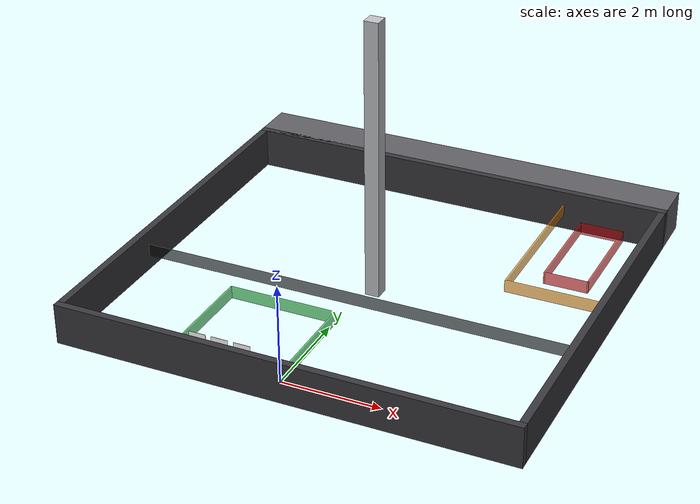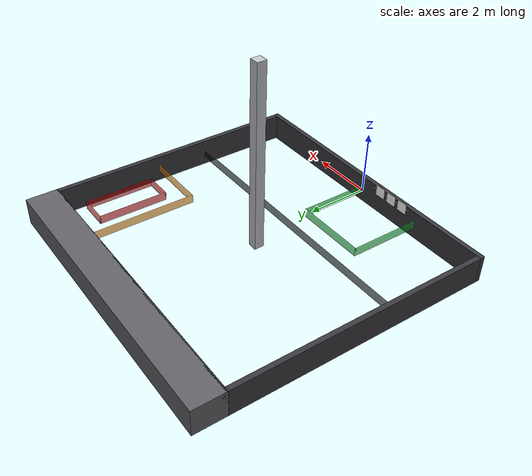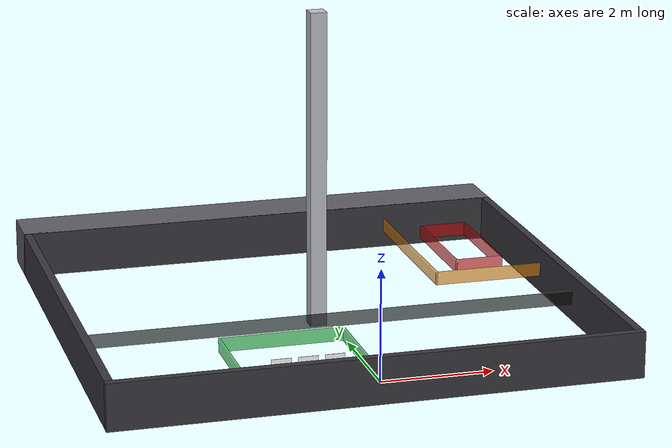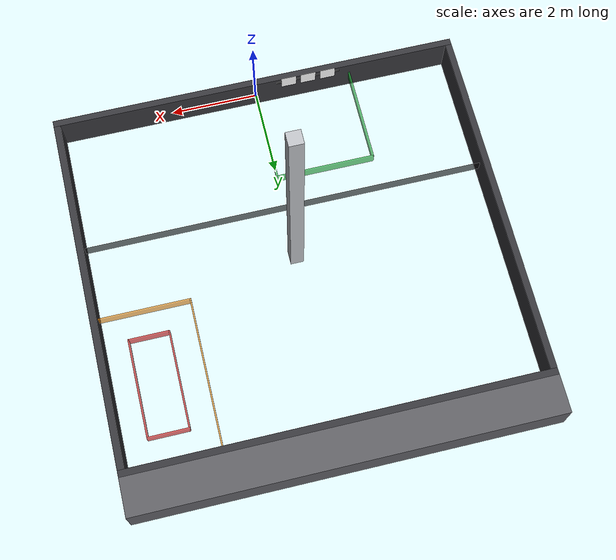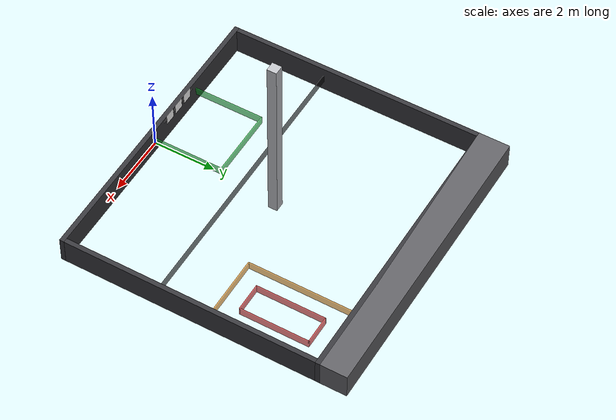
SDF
<sdf version="1.8">
 <world name="perseus_arc_world">
  <plugin filename="gz-sim-physics-system" name="gz::sim::systems::Physics"/>
  <plugin filename="gz-sim-user-commands-system" name="gz::sim::systems::UserCommands"/>
  <plugin filename="gz-sim-scene-broadcaster-system" name="gz::sim::systems::SceneBroadcaster"/>
  <plugin filename="gz-sim-sensors-system" name="gz::sim::systems::Sensors">
   <render_engine>ogre2</render_engine>
  </plugin>
  <plugin filename="gz-sim-imu-system" name="gz::sim::systems::Imu"/>
  <plugin filename="RegolithDig" name="perseus_simulation::RegolithDig"/>
  <plugin filename="SkidSlip" name="perseus_simulation::SkidSlip"><yaw_efficiency>0.25</yaw_efficiency></plugin>
  <physics type="ode">
   <real_time_update_rate>1000.0</real_time_update_rate>
   <max_step_size>0.001</max_step_size>
   <real_time_factor>1</real_time_factor>
   <ode>
    <solver>
     <type>quick</type>
     <iters>150</iters>
     <precon_iters>0</precon_iters>
     <sor>1.400000</sor>
     <use_dynamic_moi_rescaling>1</use_dynamic_moi_rescaling>
    </solver>
    <constraints>
     <cfm>0.00001</cfm>
     <erp>0.2</erp>
     <contact_max_correcting_vel>2000.000000</contact_max_correcting_vel>
     <contact_surface_layer>0.01000</contact_surface_layer>
    </constraints>
   </ode>
  </physics>
  <light type="directional" name="sun">
   <pose>0 4 10 0 0 0</pose>
   <diffuse>0.8 0.8 0.8 1</diffuse>
   <specular>0.2 0.2 0.2 1</specular>
   <attenuation>
    <range>1000</range>
    <constant>0.9</constant>
    <linear>0.01</linear>
    <quadratic>0.001</quadratic>
   </attenuation>
   <direction>-0.5 0.1 -0.9</direction>
  </light>
  <scene>
   <ambient>0.55 0.55 0.55 1</ambient>
   <background>0.80 0.82 0.85 1</background>
   <shadows>true</shadows>
  </scene>
  <include><uri>model://perseus_arc_world</uri></include>
  <include><uri>model://lunabotics_zones</uri></include>
  <include><uri>model://lunabotics_fiducials</uri></include>
 </world>
</sdf>

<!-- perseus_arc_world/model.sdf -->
<sdf version='1.8'>
  <model name='lunabotics_arena'>
    <pose>0 0 0 0 0 0</pose>
    <static>true</static>

    <!-- Front (south) wall: carries the 80/20 fiducial rail, Y = 0 -->
    <link name='Wall_S'>
      <pose>0 -0.075 0.075 0 0 0</pose>
      <collision name='Wall_S_Collision'>
        <geometry>
          <box>
            <size>9.44 0.15 0.85</size>
          </box>
        </geometry>
      </collision>
      <visual name='Wall_S_Visual'>
        <geometry>
          <box>
            <size>9.44 0.15 0.85</size>
          </box>
        </geometry>
        <material>
          <ambient>0.15 0.15 0.16 1</ambient>
          <diffuse>0.22 0.22 0.24 1</diffuse>
          <specular>0.05 0.05 0.05 1</specular>
        </material>
      </visual>
    </link>

    <!-- Rear (north) wall at the far edge of the regolith bed, Y = 8.10 -->
    <link name='Wall_N'>
      <pose>0 8.175 0.075 0 0 0</pose>
      <collision name='Wall_N_Collision'>
        <geometry>
          <box>
            <size>9.44 0.15 0.85</size>
          </box>
        </geometry>
      </collision>
      <visual name='Wall_N_Visual'>
        <geometry>
          <box>
            <size>9.44 0.15 0.85</size>
          </box>
        </geometry>
        <material>
          <ambient>0.15 0.15 0.16 1</ambient>
          <diffuse>0.22 0.22 0.24 1</diffuse>
          <specular>0.05 0.05 0.05 1</specular>
        </material>
      </visual>
    </link>

    <!-- West wall, X = -4.57 -->
    <link name='Wall_W'>
      <pose>-4.645 4.05 0.075 0 0 1.5708</pose>
      <collision name='Wall_W_Collision'>
        <geometry>
          <box>
            <size>8.10 0.15 0.85</size>
          </box>
        </geometry>
      </collision>
      <visual name='Wall_W_Visual'>
        <geometry>
          <box>
            <size>8.10 0.15 0.85</size>
          </box>
        </geometry>
        <material>
          <ambient>0.15 0.15 0.16 1</ambient>
          <diffuse>0.22 0.22 0.24 1</diffuse>
          <specular>0.05 0.05 0.05 1</specular>
        </material>
      </visual>
    </link>

    <!-- East wall, X = 4.57 (ingress side) -->
    <link name='Wall_E'>
      <pose>4.645 4.05 0.075 0 0 1.5708</pose>
      <collision name='Wall_E_Collision'>
        <geometry>
          <box>
            <size>8.10 0.15 0.85</size>
          </box>
        </geometry>
      </collision>
      <visual name='Wall_E_Visual'>
        <geometry>
          <box>
            <size>8.10 0.15 0.85</size>
          </box>
        </geometry>
        <material>
          <ambient>0.15 0.15 0.16 1</ambient>
          <diffuse>0.22 0.22 0.24 1</diffuse>
          <specular>0.05 0.05 0.05 1</specular>
        </material>
      </visual>
    </link>

    <!-- Judge platform: 1.00 m deep strip north of the regolith bed -->
    <link name='Judge_Platform'>
      <pose>0 8.60 0.075 0 0 0</pose>
      <collision name='Judge_Platform_Collision'>
        <geometry>
          <box>
            <size>9.44 1.00 0.85</size>
          </box>
        </geometry>
      </collision>
      <visual name='Judge_Platform_Visual'>
        <geometry>
          <box>
            <size>9.44 1.00 0.85</size>
          </box>
        </geometry>
        <material>
          <ambient>0.28 0.28 0.30 1</ambient>
          <diffuse>0.38 0.38 0.40 1</diffuse>
          <specular>0.05 0.05 0.05 1</specular>
        </material>
      </visual>
    </link>

    <link name='Fiducial_Rail'>
      <pose>-1.25 0.0127 0.40 0 0 0</pose>
      <collision name='Fiducial_Rail_Collision'>
        <geometry>
          <box>
            <size>1.5 0.0254 0.0254</size>
          </box>
        </geometry>
      </collision>
      <visual name='Fiducial_Rail_Visual'>
        <geometry>
          <box>
            <size>1.5 0.0254 0.0254</size>
          </box>
        </geometry>
        <material>
          <ambient>0.02 0.02 0.02 1</ambient>
          <diffuse>0.05 0.05 0.05 1</diffuse>
          <specular>0.0 0.0 0.0 1</specular>
        </material>
      </visual>
    </link>

    <link name='Center_Column'>
      <pose>0 4.05 2.575 0 0 0</pose>
      <collision name='Center_Column_Collision'>
        <geometry>
          <box>
            <size>0.30 0.30 5.85</size>
          </box>
        </geometry>
      </collision>
      <visual name='Center_Column_Visual'>
        <geometry>
          <box>
            <size>0.30 0.30 5.85</size>
          </box>
        </geometry>
        <material>
          <ambient>0.60 0.61 0.62 1</ambient>
          <diffuse>0.75 0.76 0.78 1</diffuse>
          <specular>0.1 0.1 0.1 1</specular>
        </material>
      </visual>
    </link>

    <!-- Fixed joints connecting the walls (leave the loop open) -->
    <joint name="joint_wall_s_w" type="fixed">
      <parent>Wall_S</parent>
      <child>Wall_W</child>
    </joint>

    <joint name="joint_wall_w_n" type="fixed">
      <parent>Wall_W</parent>
      <child>Wall_N</child>
    </joint>

    <joint name="joint_wall_n_e" type="fixed">
      <parent>Wall_N</parent>
      <child>Wall_E</child>
    </joint>

    <joint name="joint_wall_n_platform" type="fixed">
      <parent>Wall_N</parent>
      <child>Judge_Platform</child>
    </joint>

    <joint name="joint_wall_s_rail" type="fixed">
      <parent>Wall_S</parent>
      <child>Fiducial_Rail</child>
    </joint>

    <joint name="joint_wall_s_column" type="fixed">
      <parent>Wall_S</parent>
      <child>Center_Column</child>
    </joint>

  </model>
</sdf>

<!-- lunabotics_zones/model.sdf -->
<sdf version='1.8'>
  <model name='lunabotics_zones'>
    <pose>0 0 0 0 0 0</pose>
    <static>true</static>

    <!-- excavation obstacle divider -->
    <link name='excavation_obstacle_divider_divider'>
      <pose>0 3 0.08 0 0 0</pose>
      <visual name='excavation_obstacle_divider_divider_visual'>
        <geometry>
          <box>
            <size>9.17 0.03 0.25</size>
          </box>
        </geometry>
        <transparency>0.35</transparency>
        <!-- GUI-only annotation layer; see the header comment. -->
        <visibility_flags>1</visibility_flags>
        <material>
          <ambient>0.05 0.05 0.05 0.65</ambient>
          <diffuse>0.05 0.05 0.05 0.65</diffuse>
          <specular>0.05 0.05 0.05 1</specular>
          <emissive>0.02 0.02 0.02 1</emissive>
        </material>
      </visual>
    </link>

    <!-- starting zone -->
    <link name='starting_zone_start_w'>
      <pose>-2.25 1.125 0.08 0 0 0</pose>
      <visual name='starting_zone_start_w_visual'>
        <geometry>
          <box>
            <size>0.03 2.28 0.25</size>
          </box>
        </geometry>
        <transparency>0.35</transparency>
        <!-- GUI-only annotation layer; see the header comment. -->
        <visibility_flags>1</visibility_flags>
        <material>
          <ambient>0.1 0.7 0.2 0.65</ambient>
          <diffuse>0.1 0.7 0.2 0.65</diffuse>
          <specular>0.05 0.05 0.05 1</specular>
          <emissive>0.04 0.28 0.08 1</emissive>
        </material>
      </visual>
    </link>
    <link name='starting_zone_start_n'>
      <pose>-1.125 2.25 0.08 0 0 0</pose>
      <visual name='starting_zone_start_n_visual'>
        <geometry>
          <box>
            <size>2.28 0.03 0.25</size>
          </box>
        </geometry>
        <transparency>0.35</transparency>
        <!-- GUI-only annotation layer; see the header comment. -->
        <visibility_flags>1</visibility_flags>
        <material>
          <ambient>0.1 0.7 0.2 0.65</ambient>
          <diffuse>0.1 0.7 0.2 0.65</diffuse>
          <specular>0.05 0.05 0.05 1</specular>
          <emissive>0.04 0.28 0.08 1</emissive>
        </material>
      </visual>
    </link>
    <link name='starting_zone_start_e'>
      <pose>0 1.125 0.08 0 0 0</pose>
      <visual name='starting_zone_start_e_visual'>
        <geometry>
          <box>
            <size>0.03 2.28 0.25</size>
          </box>
        </geometry>
        <transparency>0.35</transparency>
        <!-- GUI-only annotation layer; see the header comment. -->
        <visibility_flags>1</visibility_flags>
        <material>
          <ambient>0.1 0.7 0.2 0.65</ambient>
          <diffuse>0.1 0.7 0.2 0.65</diffuse>
          <specular>0.05 0.05 0.05 1</specular>
          <emissive>0.04 0.28 0.08 1</emissive>
        </material>
      </visual>
    </link>

    <!-- construction zone -->
    <link name='construction_zone_cons_s'>
      <pose>3.545 4.69 0.08 0 0 0</pose>
      <visual name='construction_zone_cons_s_visual'>
        <geometry>
          <box>
            <size>2.08 0.03 0.25</size>
          </box>
        </geometry>
        <transparency>0.35</transparency>
        <!-- GUI-only annotation layer; see the header comment. -->
        <visibility_flags>1</visibility_flags>
        <material>
          <ambient>0.95 0.55 0.05 0.65</ambient>
          <diffuse>0.95 0.55 0.05 0.65</diffuse>
          <specular>0.05 0.05 0.05 1</specular>
          <emissive>0.38 0.22 0.02 1</emissive>
        </material>
      </visual>
    </link>
    <link name='construction_zone_cons_w'>
      <pose>2.52 6.395 0.08 0 0 0</pose>
      <visual name='construction_zone_cons_w_visual'>
        <geometry>
          <box>
            <size>0.03 3.44 0.25</size>
          </box>
        </geometry>
        <transparency>0.35</transparency>
        <!-- GUI-only annotation layer; see the header comment. -->
        <visibility_flags>1</visibility_flags>
        <material>
          <ambient>0.95 0.55 0.05 0.65</ambient>
          <diffuse>0.95 0.55 0.05 0.65</diffuse>
          <specular>0.05 0.05 0.05 1</specular>
          <emissive>0.38 0.22 0.02 1</emissive>
        </material>
      </visual>
    </link>

    <!-- berm target -->
    <link name='berm_target_berm_s'>
      <pose>3.56 5.3 0.08 0 0 0</pose>
      <visual name='berm_target_berm_s_visual'>
        <geometry>
          <box>
            <size>0.93 0.03 0.25</size>
          </box>
        </geometry>
        <transparency>0.35</transparency>
        <!-- GUI-only annotation layer; see the header comment. -->
        <visibility_flags>1</visibility_flags>
        <material>
          <ambient>0.85 0.05 0.05 0.65</ambient>
          <diffuse>0.85 0.05 0.05 0.65</diffuse>
          <specular>0.05 0.05 0.05 1</specular>
          <emissive>0.34 0.02 0.02 1</emissive>
        </material>
      </visual>
    </link>
    <link name='berm_target_berm_n'>
      <pose>3.56 7.5 0.08 0 0 0</pose>
      <visual name='berm_target_berm_n_visual'>
        <geometry>
          <box>
            <size>0.93 0.03 0.25</size>
          </box>
        </geometry>
        <transparency>0.35</transparency>
        <!-- GUI-only annotation layer; see the header comment. -->
        <visibility_flags>1</visibility_flags>
        <material>
          <ambient>0.85 0.05 0.05 0.65</ambient>
          <diffuse>0.85 0.05 0.05 0.65</diffuse>
          <specular>0.05 0.05 0.05 1</specular>
          <emissive>0.34 0.02 0.02 1</emissive>
        </material>
      </visual>
    </link>
    <link name='berm_target_berm_w'>
      <pose>3.11 6.4 0.08 0 0 0</pose>
      <visual name='berm_target_berm_w_visual'>
        <geometry>
          <box>
            <size>0.03 2.23 0.25</size>
          </box>
        </geometry>
        <transparency>0.35</transparency>
        <!-- GUI-only annotation layer; see the header comment. -->
        <visibility_flags>1</visibility_flags>
        <material>
          <ambient>0.85 0.05 0.05 0.65</ambient>
          <diffuse>0.85 0.05 0.05 0.65</diffuse>
          <specular>0.05 0.05 0.05 1</specular>
          <emissive>0.34 0.02 0.02 1</emissive>
        </material>
      </visual>
    </link>
    <link name='berm_target_berm_e'>
      <pose>4.01 6.4 0.08 0 0 0</pose>
      <visual name='berm_target_berm_e_visual'>
        <geometry>
          <box>
            <size>0.03 2.23 0.25</size>
          </box>
        </geometry>
        <transparency>0.35</transparency>
        <!-- GUI-only annotation layer; see the header comment. -->
        <visibility_flags>1</visibility_flags>
        <material>
          <ambient>0.85 0.05 0.05 0.65</ambient>
          <diffuse>0.85 0.05 0.05 0.65</diffuse>
          <specular>0.05 0.05 0.05 1</specular>
          <emissive>0.34 0.02 0.02 1</emissive>
        </material>
      </visual>
    </link>

  </model>
</sdf>

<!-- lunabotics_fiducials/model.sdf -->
<sdf version='1.8'>
  <model name='lunabotics_fiducials'>
    <pose>0 0 0 0 0 0</pose>
    <static>true</static>

    <link name='marker_67'>
      <!-- pitch then yaw turns the plate's face to +Y, i.e. north into the arena -->
      <pose>-1.7125 0.028 0.4 0 1.5708 1.5708</pose>
      <collision name='marker_67_collision'>
        <geometry><box><size>0.35 0.35 0.005</size></box></geometry>
      </collision>
      <visual name='marker_67_visual'>
        <geometry><box><size>0.35 0.35 0.005</size></box></geometry>
        <material>
          <pbr><metal><albedo_map>textures/aruco67.png</albedo_map></metal></pbr>
          <ambient>1 1 1 1</ambient>
          <diffuse>1 1 1 1</diffuse>
          <specular>0.05 0.05 0.05 1</specular>
          <emissive>0 0 0 1</emissive>
        </material>
      </visual>
    </link>

    <link name='marker_68'>
      <!-- pitch then yaw turns the plate's face to +Y, i.e. north into the arena -->
      <pose>-1.25 0.028 0.4 0 1.5708 1.5708</pose>
      <collision name='marker_68_collision'>
        <geometry><box><size>0.35 0.35 0.005</size></box></geometry>
      </collision>
      <visual name='marker_68_visual'>
        <geometry><box><size>0.35 0.35 0.005</size></box></geometry>
        <material>
          <pbr><metal><albedo_map>textures/aruco68.png</albedo_map></metal></pbr>
          <ambient>1 1 1 1</ambient>
          <diffuse>1 1 1 1</diffuse>
          <specular>0.05 0.05 0.05 1</specular>
          <emissive>0 0 0 1</emissive>
        </material>
      </visual>
    </link>

    <link name='marker_69'>
      <!-- pitch then yaw turns the plate's face to +Y, i.e. north into the arena -->
      <pose>-0.7875 0.028 0.4 0 1.5708 1.5708</pose>
      <collision name='marker_69_collision'>
        <geometry><box><size>0.35 0.35 0.005</size></box></geometry>
      </collision>
      <visual name='marker_69_visual'>
        <geometry><box><size>0.35 0.35 0.005</size></box></geometry>
        <material>
          <pbr><metal><albedo_map>textures/aruco69.png</albedo_map></metal></pbr>
          <ambient>1 1 1 1</ambient>
          <diffuse>1 1 1 1</diffuse>
          <specular>0.05 0.05 0.05 1</specular>
          <emissive>0 0 0 1</emissive>
        </material>
      </visual>
    </link>

  </model>
</sdf>
